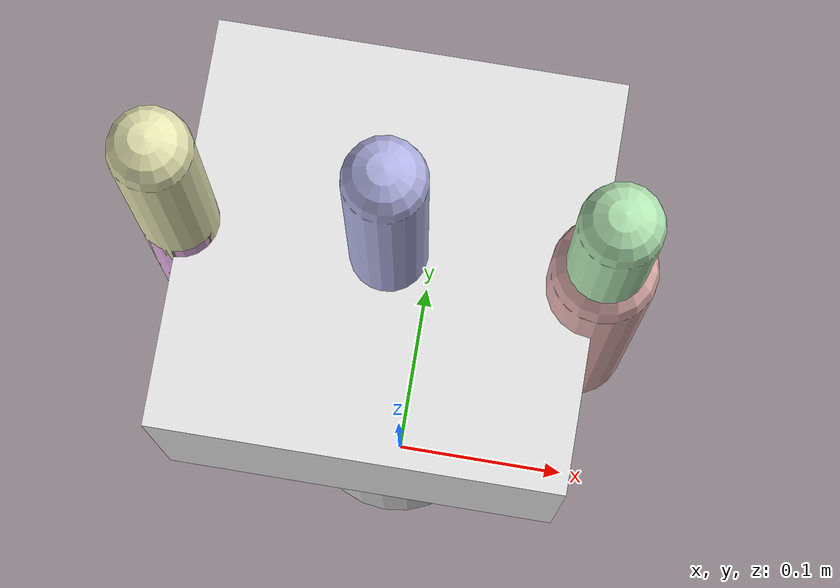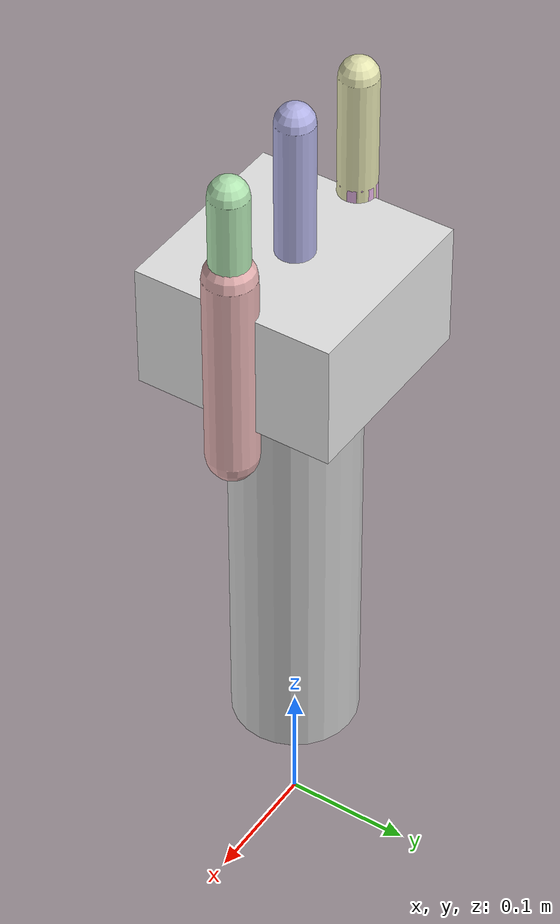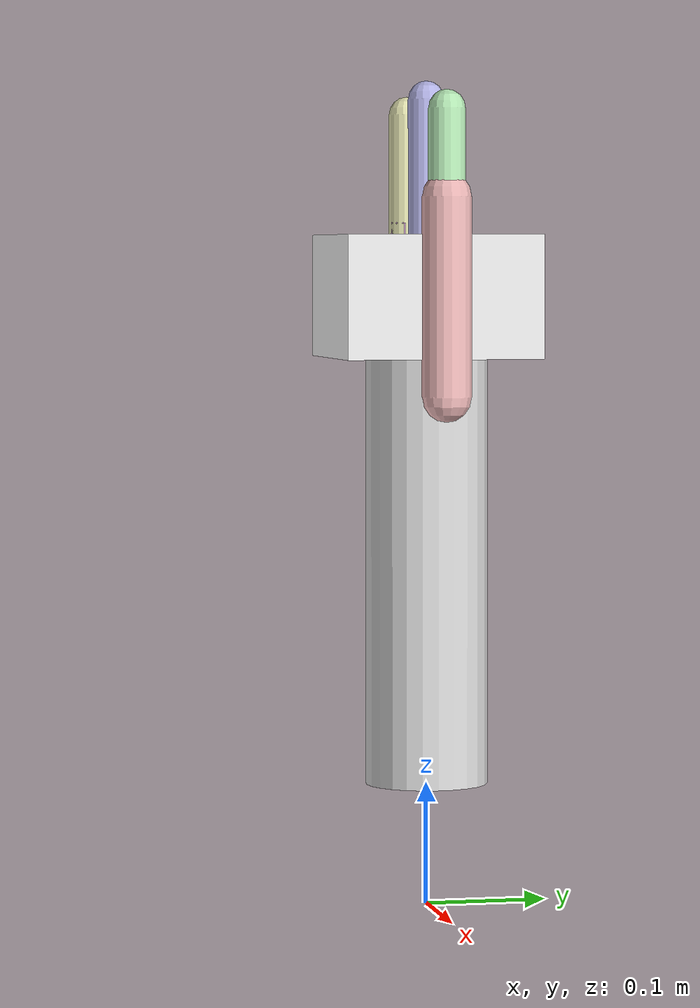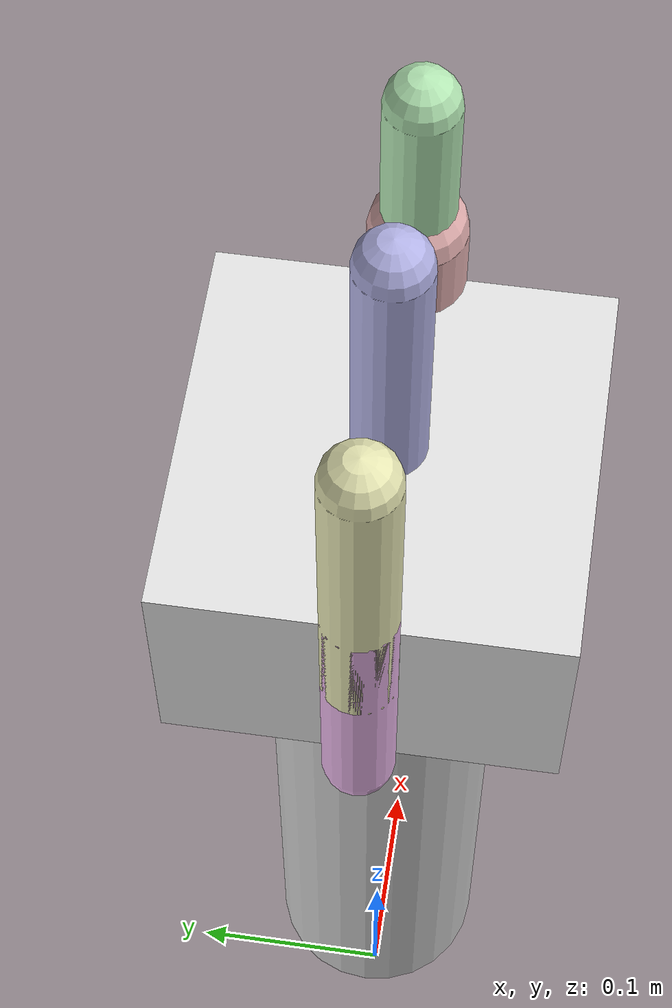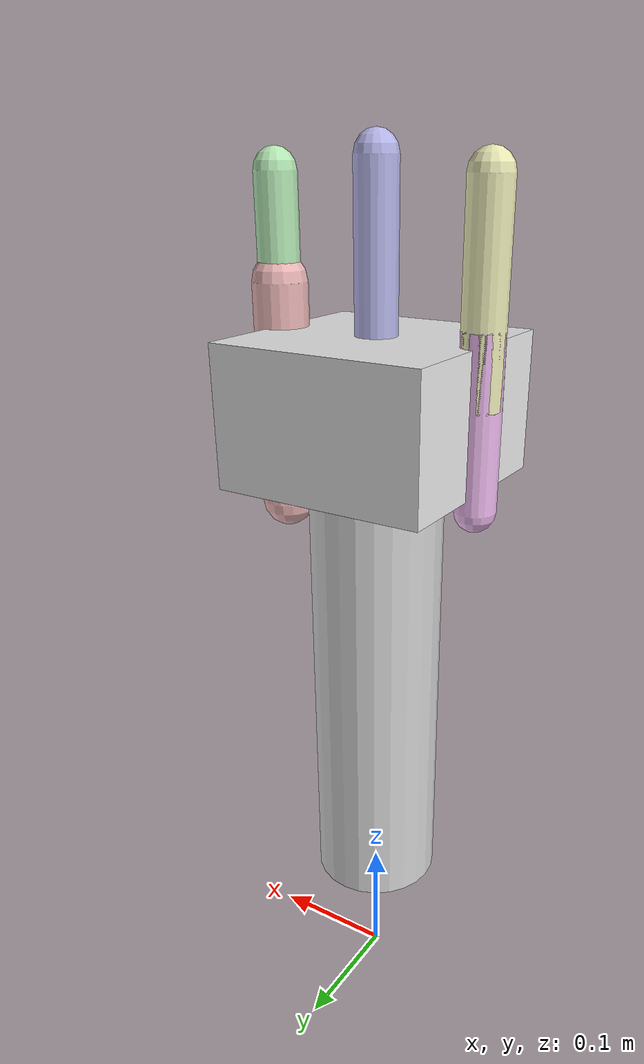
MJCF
<mujoco>
    <option timestep="0.01"/>

    <visual>
        <global offwidth="800" offheight="600"/>
    </visual>

    <worldbody>
        <!-- Add a reference frame for stabilization -->
        <body name="reference" pos="0 0 0.3">
            <geom type="sphere" size="0.01" rgba="0 0 0 0"/>
        </body>

        <!-- Floating forearm -->
        <body name="forearm" pos="0 0 0.3">
            <freejoint/>
            <geom type="cylinder" size="0.05 0.2" rgba="0.8 0.8 0.8 1"/>

            <!-- Hand -->
            <body name="hand" pos="0 0 0.2">
                <joint name="wrist_flexion" type="hinge" axis="1 0 0" range="-45 45" damping="1"/>
                <geom type="box" size="0.08 0.08 0.05" rgba="0.9 0.9 0.9 1"/>

                <!-- Thumb -->
                <body name="thumb" pos="0.08 0 0">
                    <joint name="thumb" type="hinge" axis="0 1 0" range="0 90" damping="0.5"/>
                    <geom type="capsule" size="0.02 0.08" rgba="0.9 0.7 0.7 1"/>
                </body>

                <!-- Index finger -->
                <body name="index" pos="0.08 0 0.08">
                    <joint name="index" type="hinge" axis="1 0 0" range="0 90" damping="0.5"/>
                    <geom type="capsule" size="0.015 0.07" rgba="0.7 0.9 0.7 1"/>
                </body>

                <!-- Middle finger -->
                <body name="middle" pos="0 0 0.08">
                    <joint name="middle" type="hinge" axis="1 0 0" range="0 90" damping="0.5"/>
                    <geom type="capsule" size="0.015 0.08" rgba="0.7 0.7 0.9 1"/>
                </body>

                <!-- Ring finger -->
                <body name="ring" pos="-0.08 0 0.08">
                    <joint name="ring" type="hinge" axis="1 0 0" range="0 90" damping="0.5"/>
                    <geom type="capsule" size="0.015 0.07" rgba="0.9 0.9 0.7 1"/>
                </body>

                <!-- Pinky finger -->
                <body name="pinky" pos="-0.08 0 0">
                    <joint name="pinky" type="hinge" axis="1 0 0" range="0 90" damping="0.5"/>
                    <geom type="capsule" size="0.015 0.06" rgba="0.9 0.7 0.9 1"/>
                </body>
            </body>
        </body>
    </worldbody>

    <actuator>
        <motor joint="wrist_flexion" gear="50" ctrlrange="-100 100"/>
        <motor joint="thumb" gear="30" ctrlrange="-50 50"/>
        <motor joint="index" gear="30" ctrlrange="-50 50"/>
        <motor joint="middle" gear="30" ctrlrange="-50 50"/>
        <motor joint="ring" gear="30" ctrlrange="-50 50"/>
        <motor joint="pinky" gear="30" ctrlrange="-50 50"/>
    </actuator>
</mujoco>
